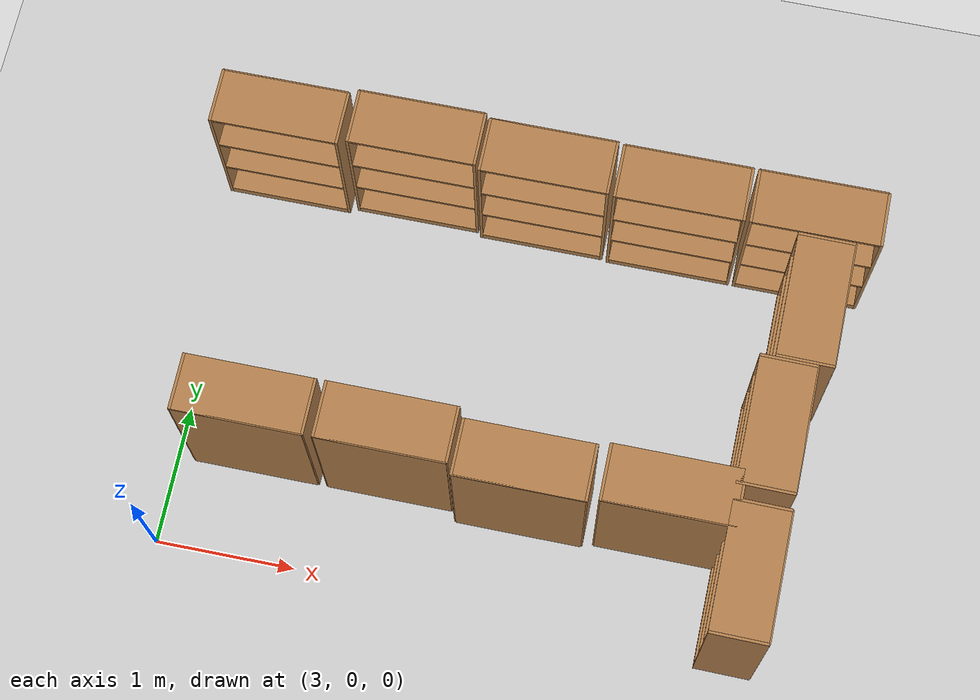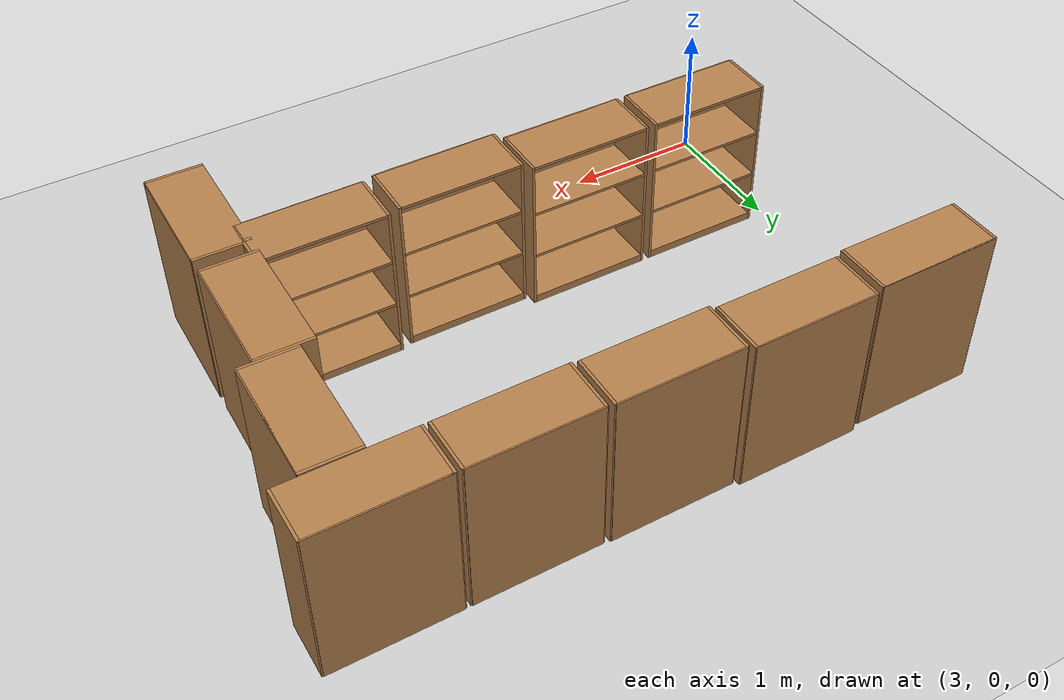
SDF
<sdf version="1.6">
 <world name="default">
  <model name="ground_plane">
   <static>1</static>
   <link name="link">
    <collision name="collision">
     <geometry><plane><normal>0 0 1</normal><size>100 100</size></plane></geometry>
     <surface><friction><ode><mu>100</mu><mu2>50</mu2></ode></friction></surface>
    </collision>
    <visual name="visual">
     <cast_shadows>0</cast_shadows>
     <geometry><plane><normal>0 0 1</normal><size>100 100</size></plane></geometry>
     <material>
      <script><uri>file://media/materials/scripts/gazebo.material</uri><name>Gazebo/Grey</name></script>
     </material>
    </visual>
   </link>
  </model>
  <model name="bookshelf_0">
   <static>1</static>
   <link name="link">
    <inertial><mass>1</mass></inertial>
    <collision name="back">
     <pose>0 0.005 0.6 0 -0 0</pose>
     <geometry><box><size>0.9 0.01 1.2</size></box></geometry>
    </collision>
    <visual name="visual1">
     <pose>0 0.005 0.6 0 -0 0</pose>
     <geometry><box><size>0.9 0.01 1.2</size></box></geometry>
     <material>
      <script><uri>file://media/materials/scripts/gazebo.material</uri><name>Gazebo/Wood</name></script>
     </material>
    </visual>
    <collision name="left_side">
     <pose>0.45 -0.195 0.6 0 -0 0</pose>
     <geometry><box><size>0.02 0.4 1.2</size></box></geometry>
    </collision>
    <visual name="visual2">
     <pose>0.45 -0.195 0.6 0 -0 0</pose>
     <geometry><box><size>0.02 0.4 1.2</size></box></geometry>
     <material>
      <script><uri>file://media/materials/scripts/gazebo.material</uri><name>Gazebo/Wood</name></script>
     </material>
    </visual>
    <collision name="right_side">
     <pose>-0.45 -0.195 0.6 0 -0 0</pose>
     <geometry><box><size>0.02 0.4 1.2</size></box></geometry>
    </collision>
    <visual name="visual3">
     <pose>-0.45 -0.195 0.6 0 -0 0</pose>
     <geometry><box><size>0.02 0.4 1.2</size></box></geometry>
     <material>
      <script><uri>file://media/materials/scripts/gazebo.material</uri><name>Gazebo/Wood</name></script>
     </material>
    </visual>
    <collision name="bottom">
     <pose>0 -0.195 0.03 0 -0 0</pose>
     <geometry><box><size>0.88 0.4 0.06</size></box></geometry>
    </collision>
    <visual name="visual4">
     <pose>0 -0.195 0.03 0 -0 0</pose>
     <geometry><box><size>0.88 0.4 0.06</size></box></geometry>
     <material>
      <script><uri>file://media/materials/scripts/gazebo.material</uri><name>Gazebo/Wood</name></script>
     </material>
    </visual>
    <collision name="top">
     <pose>0 -0.195 1.19 0 -0 0</pose>
     <geometry><box><size>0.88 0.4 0.02</size></box></geometry>
    </collision>
    <visual name="visual5">
     <pose>0 -0.195 1.19 0 -0 0</pose>
     <geometry><box><size>0.88 0.4 0.02</size></box></geometry>
     <material>
      <script><uri>file://media/materials/scripts/gazebo.material</uri><name>Gazebo/Wood</name></script>
     </material>
    </visual>
    <collision name="low_shelf">
     <pose>0 -0.195 0.43 0 -0 0</pose>
     <geometry><box><size>0.88 0.4 0.02</size></box></geometry>
    </collision>
    <visual name="visual6">
     <pose>0 -0.195 0.43 0 -0 0</pose>
     <geometry><box><size>0.88 0.4 0.02</size></box></geometry>
     <material>
      <script><uri>file://media/materials/scripts/gazebo.material</uri><name>Gazebo/Wood</name></script>
     </material>
    </visual>
    <collision name="high_shelf">
     <pose>0 -0.195 0.8 0 -0 0</pose>
     <geometry><box><size>0.88 0.4 0.02</size></box></geometry>
    </collision>
    <visual name="visual7">
     <pose>0 -0.195 0.8 0 -0 0</pose>
     <geometry><box><size>0.88 0.4 0.02</size></box></geometry>
     <material>
      <script><uri>file://media/materials/scripts/gazebo.material</uri><name>Gazebo/Wood</name></script>
     </material>
    </visual>
   </link>
   <pose>7.12078 3.11649 0 0 -0 0</pose>
  </model>
  <model name="bookshelf_0_clone">
   <static>1</static>
   <link name="link">
    <inertial><mass>1</mass></inertial>
    <collision name="back">
     <pose>0 0.005 0.6 0 -0 0</pose>
     <geometry><box><size>0.9 0.01 1.2</size></box></geometry>
    </collision>
    <visual name="visual1">
     <pose>0 0.005 0.6 0 -0 0</pose>
     <geometry><box><size>0.9 0.01 1.2</size></box></geometry>
     <material>
      <script><uri>file://media/materials/scripts/gazebo.material</uri><name>Gazebo/Wood</name></script>
     </material>
    </visual>
    <collision name="left_side">
     <pose>0.45 -0.195 0.6 0 -0 0</pose>
     <geometry><box><size>0.02 0.4 1.2</size></box></geometry>
    </collision>
    <visual name="visual2">
     <pose>0.45 -0.195 0.6 0 -0 0</pose>
     <geometry><box><size>0.02 0.4 1.2</size></box></geometry>
     <material>
      <script><uri>file://media/materials/scripts/gazebo.material</uri><name>Gazebo/Wood</name></script>
     </material>
    </visual>
    <collision name="right_side">
     <pose>-0.45 -0.195 0.6 0 -0 0</pose>
     <geometry><box><size>0.02 0.4 1.2</size></box></geometry>
    </collision>
    <visual name="visual3">
     <pose>-0.45 -0.195 0.6 0 -0 0</pose>
     <geometry><box><size>0.02 0.4 1.2</size></box></geometry>
     <material>
      <script><uri>file://media/materials/scripts/gazebo.material</uri><name>Gazebo/Wood</name></script>
     </material>
    </visual>
    <collision name="bottom">
     <pose>0 -0.195 0.03 0 -0 0</pose>
     <geometry><box><size>0.88 0.4 0.06</size></box></geometry>
    </collision>
    <visual name="visual4">
     <pose>0 -0.195 0.03 0 -0 0</pose>
     <geometry><box><size>0.88 0.4 0.06</size></box></geometry>
     <material>
      <script><uri>file://media/materials/scripts/gazebo.material</uri><name>Gazebo/Wood</name></script>
     </material>
    </visual>
    <collision name="top">
     <pose>0 -0.195 1.19 0 -0 0</pose>
     <geometry><box><size>0.88 0.4 0.02</size></box></geometry>
    </collision>
    <visual name="visual5">
     <pose>0 -0.195 1.19 0 -0 0</pose>
     <geometry><box><size>0.88 0.4 0.02</size></box></geometry>
     <material>
      <script><uri>file://media/materials/scripts/gazebo.material</uri><name>Gazebo/Wood</name></script>
     </material>
    </visual>
    <collision name="low_shelf">
     <pose>0 -0.195 0.43 0 -0 0</pose>
     <geometry><box><size>0.88 0.4 0.02</size></box></geometry>
    </collision>
    <visual name="visual6">
     <pose>0 -0.195 0.43 0 -0 0</pose>
     <geometry><box><size>0.88 0.4 0.02</size></box></geometry>
     <material>
      <script><uri>file://media/materials/scripts/gazebo.material</uri><name>Gazebo/Wood</name></script>
     </material>
    </visual>
    <collision name="high_shelf">
     <pose>0 -0.195 0.8 0 -0 0</pose>
     <geometry><box><size>0.88 0.4 0.02</size></box></geometry>
    </collision>
    <visual name="visual7">
     <pose>0 -0.195 0.8 0 -0 0</pose>
     <geometry><box><size>0.88 0.4 0.02</size></box></geometry>
     <material>
      <script><uri>file://media/materials/scripts/gazebo.material</uri><name>Gazebo/Wood</name></script>
     </material>
    </visual>
   </link>
   <pose>6.17473 3.11664 0 0 -0 0</pose>
  </model>
  <model name="bookshelf_0_clone_0">
   <static>1</static>
   <link name="link">
    <inertial><mass>1</mass></inertial>
    <collision name="back">
     <pose>0 0.005 0.6 0 -0 0</pose>
     <geometry><box><size>0.9 0.01 1.2</size></box></geometry>
    </collision>
    <visual name="visual1">
     <pose>0 0.005 0.6 0 -0 0</pose>
     <geometry><box><size>0.9 0.01 1.2</size></box></geometry>
     <material>
      <script><uri>file://media/materials/scripts/gazebo.material</uri><name>Gazebo/Wood</name></script>
     </material>
    </visual>
    <collision name="left_side">
     <pose>0.45 -0.195 0.6 0 -0 0</pose>
     <geometry><box><size>0.02 0.4 1.2</size></box></geometry>
    </collision>
    <visual name="visual2">
     <pose>0.45 -0.195 0.6 0 -0 0</pose>
     <geometry><box><size>0.02 0.4 1.2</size></box></geometry>
     <material>
      <script><uri>file://media/materials/scripts/gazebo.material</uri><name>Gazebo/Wood</name></script>
     </material>
    </visual>
    <collision name="right_side">
     <pose>-0.45 -0.195 0.6 0 -0 0</pose>
     <geometry><box><size>0.02 0.4 1.2</size></box></geometry>
    </collision>
    <visual name="visual3">
     <pose>-0.45 -0.195 0.6 0 -0 0</pose>
     <geometry><box><size>0.02 0.4 1.2</size></box></geometry>
     <material>
      <script><uri>file://media/materials/scripts/gazebo.material</uri><name>Gazebo/Wood</name></script>
     </material>
    </visual>
    <collision name="bottom">
     <pose>0 -0.195 0.03 0 -0 0</pose>
     <geometry><box><size>0.88 0.4 0.06</size></box></geometry>
    </collision>
    <visual name="visual4">
     <pose>0 -0.195 0.03 0 -0 0</pose>
     <geometry><box><size>0.88 0.4 0.06</size></box></geometry>
     <material>
      <script><uri>file://media/materials/scripts/gazebo.material</uri><name>Gazebo/Wood</name></script>
     </material>
    </visual>
    <collision name="top">
     <pose>0 -0.195 1.19 0 -0 0</pose>
     <geometry><box><size>0.88 0.4 0.02</size></box></geometry>
    </collision>
    <visual name="visual5">
     <pose>0 -0.195 1.19 0 -0 0</pose>
     <geometry><box><size>0.88 0.4 0.02</size></box></geometry>
     <material>
      <script><uri>file://media/materials/scripts/gazebo.material</uri><name>Gazebo/Wood</name></script>
     </material>
    </visual>
    <collision name="low_shelf">
     <pose>0 -0.195 0.43 0 -0 0</pose>
     <geometry><box><size>0.88 0.4 0.02</size></box></geometry>
    </collision>
    <visual name="visual6">
     <pose>0 -0.195 0.43 0 -0 0</pose>
     <geometry><box><size>0.88 0.4 0.02</size></box></geometry>
     <material>
      <script><uri>file://media/materials/scripts/gazebo.material</uri><name>Gazebo/Wood</name></script>
     </material>
    </visual>
    <collision name="high_shelf">
     <pose>0 -0.195 0.8 0 -0 0</pose>
     <geometry><box><size>0.88 0.4 0.02</size></box></geometry>
    </collision>
    <visual name="visual7">
     <pose>0 -0.195 0.8 0 -0 0</pose>
     <geometry><box><size>0.88 0.4 0.02</size></box></geometry>
     <material>
      <script><uri>file://media/materials/scripts/gazebo.material</uri><name>Gazebo/Wood</name></script>
     </material>
    </visual>
   </link>
   <pose>5.22479 3.12787 0 0 -0 0</pose>
  </model>
  <model name="bookshelf_0_clone_1">
   <static>1</static>
   <link name="link">
    <inertial><mass>1</mass></inertial>
    <collision name="back">
     <pose>0 0.005 0.6 0 -0 0</pose>
     <geometry><box><size>0.9 0.01 1.2</size></box></geometry>
    </collision>
    <visual name="visual1">
     <pose>0 0.005 0.6 0 -0 0</pose>
     <geometry><box><size>0.9 0.01 1.2</size></box></geometry>
     <material>
      <script><uri>file://media/materials/scripts/gazebo.material</uri><name>Gazebo/Wood</name></script>
     </material>
    </visual>
    <collision name="left_side">
     <pose>0.45 -0.195 0.6 0 -0 0</pose>
     <geometry><box><size>0.02 0.4 1.2</size></box></geometry>
    </collision>
    <visual name="visual2">
     <pose>0.45 -0.195 0.6 0 -0 0</pose>
     <geometry><box><size>0.02 0.4 1.2</size></box></geometry>
     <material>
      <script><uri>file://media/materials/scripts/gazebo.material</uri><name>Gazebo/Wood</name></script>
     </material>
    </visual>
    <collision name="right_side">
     <pose>-0.45 -0.195 0.6 0 -0 0</pose>
     <geometry><box><size>0.02 0.4 1.2</size></box></geometry>
    </collision>
    <visual name="visual3">
     <pose>-0.45 -0.195 0.6 0 -0 0</pose>
     <geometry><box><size>0.02 0.4 1.2</size></box></geometry>
     <material>
      <script><uri>file://media/materials/scripts/gazebo.material</uri><name>Gazebo/Wood</name></script>
     </material>
    </visual>
    <collision name="bottom">
     <pose>0 -0.195 0.03 0 -0 0</pose>
     <geometry><box><size>0.88 0.4 0.06</size></box></geometry>
    </collision>
    <visual name="visual4">
     <pose>0 -0.195 0.03 0 -0 0</pose>
     <geometry><box><size>0.88 0.4 0.06</size></box></geometry>
     <material>
      <script><uri>file://media/materials/scripts/gazebo.material</uri><name>Gazebo/Wood</name></script>
     </material>
    </visual>
    <collision name="top">
     <pose>0 -0.195 1.19 0 -0 0</pose>
     <geometry><box><size>0.88 0.4 0.02</size></box></geometry>
    </collision>
    <visual name="visual5">
     <pose>0 -0.195 1.19 0 -0 0</pose>
     <geometry><box><size>0.88 0.4 0.02</size></box></geometry>
     <material>
      <script><uri>file://media/materials/scripts/gazebo.material</uri><name>Gazebo/Wood</name></script>
     </material>
    </visual>
    <collision name="low_shelf">
     <pose>0 -0.195 0.43 0 -0 0</pose>
     <geometry><box><size>0.88 0.4 0.02</size></box></geometry>
    </collision>
    <visual name="visual6">
     <pose>0 -0.195 0.43 0 -0 0</pose>
     <geometry><box><size>0.88 0.4 0.02</size></box></geometry>
     <material>
      <script><uri>file://media/materials/scripts/gazebo.material</uri><name>Gazebo/Wood</name></script>
     </material>
    </visual>
    <collision name="high_shelf">
     <pose>0 -0.195 0.8 0 -0 0</pose>
     <geometry><box><size>0.88 0.4 0.02</size></box></geometry>
    </collision>
    <visual name="visual7">
     <pose>0 -0.195 0.8 0 -0 0</pose>
     <geometry><box><size>0.88 0.4 0.02</size></box></geometry>
     <material>
      <script><uri>file://media/materials/scripts/gazebo.material</uri><name>Gazebo/Wood</name></script>
     </material>
    </visual>
   </link>
   <pose>4.28509 3.15898 0 0 -0 0</pose>
  </model>
  <model name="bookshelf_0_clone_2">
   <static>1</static>
   <link name="link">
    <inertial><mass>1</mass></inertial>
    <collision name="back">
     <pose>0 0.005 0.6 0 -0 0</pose>
     <geometry><box><size>0.9 0.01 1.2</size></box></geometry>
    </collision>
    <visual name="visual1">
     <pose>0 0.005 0.6 0 -0 0</pose>
     <geometry><box><size>0.9 0.01 1.2</size></box></geometry>
     <material>
      <script><uri>file://media/materials/scripts/gazebo.material</uri><name>Gazebo/Wood</name></script>
     </material>
    </visual>
    <collision name="left_side">
     <pose>0.45 -0.195 0.6 0 -0 0</pose>
     <geometry><box><size>0.02 0.4 1.2</size></box></geometry>
    </collision>
    <visual name="visual2">
     <pose>0.45 -0.195 0.6 0 -0 0</pose>
     <geometry><box><size>0.02 0.4 1.2</size></box></geometry>
     <material>
      <script><uri>file://media/materials/scripts/gazebo.material</uri><name>Gazebo/Wood</name></script>
     </material>
    </visual>
    <collision name="right_side">
     <pose>-0.45 -0.195 0.6 0 -0 0</pose>
     <geometry><box><size>0.02 0.4 1.2</size></box></geometry>
    </collision>
    <visual name="visual3">
     <pose>-0.45 -0.195 0.6 0 -0 0</pose>
     <geometry><box><size>0.02 0.4 1.2</size></box></geometry>
     <material>
      <script><uri>file://media/materials/scripts/gazebo.material</uri><name>Gazebo/Wood</name></script>
     </material>
    </visual>
    <collision name="bottom">
     <pose>0 -0.195 0.03 0 -0 0</pose>
     <geometry><box><size>0.88 0.4 0.06</size></box></geometry>
    </collision>
    <visual name="visual4">
     <pose>0 -0.195 0.03 0 -0 0</pose>
     <geometry><box><size>0.88 0.4 0.06</size></box></geometry>
     <material>
      <script><uri>file://media/materials/scripts/gazebo.material</uri><name>Gazebo/Wood</name></script>
     </material>
    </visual>
    <collision name="top">
     <pose>0 -0.195 1.19 0 -0 0</pose>
     <geometry><box><size>0.88 0.4 0.02</size></box></geometry>
    </collision>
    <visual name="visual5">
     <pose>0 -0.195 1.19 0 -0 0</pose>
     <geometry><box><size>0.88 0.4 0.02</size></box></geometry>
     <material>
      <script><uri>file://media/materials/scripts/gazebo.material</uri><name>Gazebo/Wood</name></script>
     </material>
    </visual>
    <collision name="low_shelf">
     <pose>0 -0.195 0.43 0 -0 0</pose>
     <geometry><box><size>0.88 0.4 0.02</size></box></geometry>
    </collision>
    <visual name="visual6">
     <pose>0 -0.195 0.43 0 -0 0</pose>
     <geometry><box><size>0.88 0.4 0.02</size></box></geometry>
     <material>
      <script><uri>file://media/materials/scripts/gazebo.material</uri><name>Gazebo/Wood</name></script>
     </material>
    </visual>
    <collision name="high_shelf">
     <pose>0 -0.195 0.8 0 -0 0</pose>
     <geometry><box><size>0.88 0.4 0.02</size></box></geometry>
    </collision>
    <visual name="visual7">
     <pose>0 -0.195 0.8 0 -0 0</pose>
     <geometry><box><size>0.88 0.4 0.02</size></box></geometry>
     <material>
      <script><uri>file://media/materials/scripts/gazebo.material</uri><name>Gazebo/Wood</name></script>
     </material>
    </visual>
   </link>
   <pose>3.31626 3.12697 0 0 -0 0</pose>
  </model>
  <model name="bookshelf_0_clone_6_clone_clone_6">
   <static>1</static>
   <link name="link">
    <inertial><mass>1</mass></inertial>
    <collision name="back">
     <pose>0 0.005 0.6 0 -0 0</pose>
     <geometry><box><size>0.9 0.01 1.2</size></box></geometry>
    </collision>
    <visual name="visual1">
     <pose>0 0.005 0.6 0 -0 0</pose>
     <geometry><box><size>0.9 0.01 1.2</size></box></geometry>
     <material>
      <script><uri>file://media/materials/scripts/gazebo.material</uri><name>Gazebo/Wood</name></script>
     </material>
    </visual>
    <collision name="left_side">
     <pose>0.45 -0.195 0.6 0 -0 0</pose>
     <geometry><box><size>0.02 0.4 1.2</size></box></geometry>
    </collision>
    <visual name="visual2">
     <pose>0.45 -0.195 0.6 0 -0 0</pose>
     <geometry><box><size>0.02 0.4 1.2</size></box></geometry>
     <material>
      <script><uri>file://media/materials/scripts/gazebo.material</uri><name>Gazebo/Wood</name></script>
     </material>
    </visual>
    <collision name="right_side">
     <pose>-0.45 -0.195 0.6 0 -0 0</pose>
     <geometry><box><size>0.02 0.4 1.2</size></box></geometry>
    </collision>
    <visual name="visual3">
     <pose>-0.45 -0.195 0.6 0 -0 0</pose>
     <geometry><box><size>0.02 0.4 1.2</size></box></geometry>
     <material>
      <script><uri>file://media/materials/scripts/gazebo.material</uri><name>Gazebo/Wood</name></script>
     </material>
    </visual>
    <collision name="bottom">
     <pose>0 -0.195 0.03 0 -0 0</pose>
     <geometry><box><size>0.88 0.4 0.06</size></box></geometry>
    </collision>
    <visual name="visual4">
     <pose>0 -0.195 0.03 0 -0 0</pose>
     <geometry><box><size>0.88 0.4 0.06</size></box></geometry>
     <material>
      <script><uri>file://media/materials/scripts/gazebo.material</uri><name>Gazebo/Wood</name></script>
     </material>
    </visual>
    <collision name="top">
     <pose>0 -0.195 1.19 0 -0 0</pose>
     <geometry><box><size>0.88 0.4 0.02</size></box></geometry>
    </collision>
    <visual name="visual5">
     <pose>0 -0.195 1.19 0 -0 0</pose>
     <geometry><box><size>0.88 0.4 0.02</size></box></geometry>
     <material>
      <script><uri>file://media/materials/scripts/gazebo.material</uri><name>Gazebo/Wood</name></script>
     </material>
    </visual>
    <collision name="low_shelf">
     <pose>0 -0.195 0.43 0 -0 0</pose>
     <geometry><box><size>0.88 0.4 0.02</size></box></geometry>
    </collision>
    <visual name="visual6">
     <pose>0 -0.195 0.43 0 -0 0</pose>
     <geometry><box><size>0.88 0.4 0.02</size></box></geometry>
     <material>
      <script><uri>file://media/materials/scripts/gazebo.material</uri><name>Gazebo/Wood</name></script>
     </material>
    </visual>
    <collision name="high_shelf">
     <pose>0 -0.195 0.8 0 -0 0</pose>
     <geometry><box><size>0.88 0.4 0.02</size></box></geometry>
    </collision>
    <visual name="visual7">
     <pose>0 -0.195 0.8 0 -0 0</pose>
     <geometry><box><size>0.88 0.4 0.02</size></box></geometry>
     <material>
      <script><uri>file://media/materials/scripts/gazebo.material</uri><name>Gazebo/Wood</name></script>
     </material>
    </visual>
   </link>
   <pose>6.48033 0.592761 0 0 -0 3.14</pose>
  </model>
  <model name="bookshelf_0_clone_6_clone_clone_7">
   <static>1</static>
   <link name="link">
    <inertial><mass>1</mass></inertial>
    <collision name="back">
     <pose>0 0.005 0.6 0 -0 0</pose>
     <geometry><box><size>0.9 0.01 1.2</size></box></geometry>
    </collision>
    <visual name="visual1">
     <pose>0 0.005 0.6 0 -0 0</pose>
     <geometry><box><size>0.9 0.01 1.2</size></box></geometry>
     <material>
      <script><uri>file://media/materials/scripts/gazebo.material</uri><name>Gazebo/Wood</name></script>
     </material>
    </visual>
    <collision name="left_side">
     <pose>0.45 -0.195 0.6 0 -0 0</pose>
     <geometry><box><size>0.02 0.4 1.2</size></box></geometry>
    </collision>
    <visual name="visual2">
     <pose>0.45 -0.195 0.6 0 -0 0</pose>
     <geometry><box><size>0.02 0.4 1.2</size></box></geometry>
     <material>
      <script><uri>file://media/materials/scripts/gazebo.material</uri><name>Gazebo/Wood</name></script>
     </material>
    </visual>
    <collision name="right_side">
     <pose>-0.45 -0.195 0.6 0 -0 0</pose>
     <geometry><box><size>0.02 0.4 1.2</size></box></geometry>
    </collision>
    <visual name="visual3">
     <pose>-0.45 -0.195 0.6 0 -0 0</pose>
     <geometry><box><size>0.02 0.4 1.2</size></box></geometry>
     <material>
      <script><uri>file://media/materials/scripts/gazebo.material</uri><name>Gazebo/Wood</name></script>
     </material>
    </visual>
    <collision name="bottom">
     <pose>0 -0.195 0.03 0 -0 0</pose>
     <geometry><box><size>0.88 0.4 0.06</size></box></geometry>
    </collision>
    <visual name="visual4">
     <pose>0 -0.195 0.03 0 -0 0</pose>
     <geometry><box><size>0.88 0.4 0.06</size></box></geometry>
     <material>
      <script><uri>file://media/materials/scripts/gazebo.material</uri><name>Gazebo/Wood</name></script>
     </material>
    </visual>
    <collision name="top">
     <pose>0 -0.195 1.19 0 -0 0</pose>
     <geometry><box><size>0.88 0.4 0.02</size></box></geometry>
    </collision>
    <visual name="visual5">
     <pose>0 -0.195 1.19 0 -0 0</pose>
     <geometry><box><size>0.88 0.4 0.02</size></box></geometry>
     <material>
      <script><uri>file://media/materials/scripts/gazebo.material</uri><name>Gazebo/Wood</name></script>
     </material>
    </visual>
    <collision name="low_shelf">
     <pose>0 -0.195 0.43 0 -0 0</pose>
     <geometry><box><size>0.88 0.4 0.02</size></box></geometry>
    </collision>
    <visual name="visual6">
     <pose>0 -0.195 0.43 0 -0 0</pose>
     <geometry><box><size>0.88 0.4 0.02</size></box></geometry>
     <material>
      <script><uri>file://media/materials/scripts/gazebo.material</uri><name>Gazebo/Wood</name></script>
     </material>
    </visual>
    <collision name="high_shelf">
     <pose>0 -0.195 0.8 0 -0 0</pose>
     <geometry><box><size>0.88 0.4 0.02</size></box></geometry>
    </collision>
    <visual name="visual7">
     <pose>0 -0.195 0.8 0 -0 0</pose>
     <geometry><box><size>0.88 0.4 0.02</size></box></geometry>
     <material>
      <script><uri>file://media/materials/scripts/gazebo.material</uri><name>Gazebo/Wood</name></script>
     </material>
    </visual>
   </link>
   <pose>5.49251 0.567553 0 0 -0 3.14</pose>
  </model>
  <model name="bookshelf_0_clone_6_clone_clone_8">
   <static>1</static>
   <link name="link">
    <inertial><mass>1</mass></inertial>
    <collision name="back">
     <pose>0 0.005 0.6 0 -0 0</pose>
     <geometry><box><size>0.9 0.01 1.2</size></box></geometry>
    </collision>
    <visual name="visual1">
     <pose>0 0.005 0.6 0 -0 0</pose>
     <geometry><box><size>0.9 0.01 1.2</size></box></geometry>
     <material>
      <script><uri>file://media/materials/scripts/gazebo.material</uri><name>Gazebo/Wood</name></script>
     </material>
    </visual>
    <collision name="left_side">
     <pose>0.45 -0.195 0.6 0 -0 0</pose>
     <geometry><box><size>0.02 0.4 1.2</size></box></geometry>
    </collision>
    <visual name="visual2">
     <pose>0.45 -0.195 0.6 0 -0 0</pose>
     <geometry><box><size>0.02 0.4 1.2</size></box></geometry>
     <material>
      <script><uri>file://media/materials/scripts/gazebo.material</uri><name>Gazebo/Wood</name></script>
     </material>
    </visual>
    <collision name="right_side">
     <pose>-0.45 -0.195 0.6 0 -0 0</pose>
     <geometry><box><size>0.02 0.4 1.2</size></box></geometry>
    </collision>
    <visual name="visual3">
     <pose>-0.45 -0.195 0.6 0 -0 0</pose>
     <geometry><box><size>0.02 0.4 1.2</size></box></geometry>
     <material>
      <script><uri>file://media/materials/scripts/gazebo.material</uri><name>Gazebo/Wood</name></script>
     </material>
    </visual>
    <collision name="bottom">
     <pose>0 -0.195 0.03 0 -0 0</pose>
     <geometry><box><size>0.88 0.4 0.06</size></box></geometry>
    </collision>
    <visual name="visual4">
     <pose>0 -0.195 0.03 0 -0 0</pose>
     <geometry><box><size>0.88 0.4 0.06</size></box></geometry>
     <material>
      <script><uri>file://media/materials/scripts/gazebo.material</uri><name>Gazebo/Wood</name></script>
     </material>
    </visual>
    <collision name="top">
     <pose>0 -0.195 1.19 0 -0 0</pose>
     <geometry><box><size>0.88 0.4 0.02</size></box></geometry>
    </collision>
    <visual name="visual5">
     <pose>0 -0.195 1.19 0 -0 0</pose>
     <geometry><box><size>0.88 0.4 0.02</size></box></geometry>
     <material>
      <script><uri>file://media/materials/scripts/gazebo.material</uri><name>Gazebo/Wood</name></script>
     </material>
    </visual>
    <collision name="low_shelf">
     <pose>0 -0.195 0.43 0 -0 0</pose>
     <geometry><box><size>0.88 0.4 0.02</size></box></geometry>
    </collision>
    <visual name="visual6">
     <pose>0 -0.195 0.43 0 -0 0</pose>
     <geometry><box><size>0.88 0.4 0.02</size></box></geometry>
     <material>
      <script><uri>file://media/materials/scripts/gazebo.material</uri><name>Gazebo/Wood</name></script>
     </material>
    </visual>
    <collision name="high_shelf">
     <pose>0 -0.195 0.8 0 -0 0</pose>
     <geometry><box><size>0.88 0.4 0.02</size></box></geometry>
    </collision>
    <visual name="visual7">
     <pose>0 -0.195 0.8 0 -0 0</pose>
     <geometry><box><size>0.88 0.4 0.02</size></box></geometry>
     <material>
      <script><uri>file://media/materials/scripts/gazebo.material</uri><name>Gazebo/Wood</name></script>
     </material>
    </visual>
   </link>
   <pose>4.54635 0.641093 0 0 -0 3.14</pose>
  </model>
  <model name="bookshelf_0_clone_6_clone_clone_9">
   <static>1</static>
   <link name="link">
    <inertial><mass>1</mass></inertial>
    <collision name="back">
     <pose>0 0.005 0.6 0 -0 0</pose>
     <geometry><box><size>0.9 0.01 1.2</size></box></geometry>
    </collision>
    <visual name="visual1">
     <pose>0 0.005 0.6 0 -0 0</pose>
     <geometry><box><size>0.9 0.01 1.2</size></box></geometry>
     <material>
      <script><uri>file://media/materials/scripts/gazebo.material</uri><name>Gazebo/Wood</name></script>
     </material>
    </visual>
    <collision name="left_side">
     <pose>0.45 -0.195 0.6 0 -0 0</pose>
     <geometry><box><size>0.02 0.4 1.2</size></box></geometry>
    </collision>
    <visual name="visual2">
     <pose>0.45 -0.195 0.6 0 -0 0</pose>
     <geometry><box><size>0.02 0.4 1.2</size></box></geometry>
     <material>
      <script><uri>file://media/materials/scripts/gazebo.material</uri><name>Gazebo/Wood</name></script>
     </material>
    </visual>
    <collision name="right_side">
     <pose>-0.45 -0.195 0.6 0 -0 0</pose>
     <geometry><box><size>0.02 0.4 1.2</size></box></geometry>
    </collision>
    <visual name="visual3">
     <pose>-0.45 -0.195 0.6 0 -0 0</pose>
     <geometry><box><size>0.02 0.4 1.2</size></box></geometry>
     <material>
      <script><uri>file://media/materials/scripts/gazebo.material</uri><name>Gazebo/Wood</name></script>
     </material>
    </visual>
    <collision name="bottom">
     <pose>0 -0.195 0.03 0 -0 0</pose>
     <geometry><box><size>0.88 0.4 0.06</size></box></geometry>
    </collision>
    <visual name="visual4">
     <pose>0 -0.195 0.03 0 -0 0</pose>
     <geometry><box><size>0.88 0.4 0.06</size></box></geometry>
     <material>
      <script><uri>file://media/materials/scripts/gazebo.material</uri><name>Gazebo/Wood</name></script>
     </material>
    </visual>
    <collision name="top">
     <pose>0 -0.195 1.19 0 -0 0</pose>
     <geometry><box><size>0.88 0.4 0.02</size></box></geometry>
    </collision>
    <visual name="visual5">
     <pose>0 -0.195 1.19 0 -0 0</pose>
     <geometry><box><size>0.88 0.4 0.02</size></box></geometry>
     <material>
      <script><uri>file://media/materials/scripts/gazebo.material</uri><name>Gazebo/Wood</name></script>
     </material>
    </visual>
    <collision name="low_shelf">
     <pose>0 -0.195 0.43 0 -0 0</pose>
     <geometry><box><size>0.88 0.4 0.02</size></box></geometry>
    </collision>
    <visual name="visual6">
     <pose>0 -0.195 0.43 0 -0 0</pose>
     <geometry><box><size>0.88 0.4 0.02</size></box></geometry>
     <material>
      <script><uri>file://media/materials/scripts/gazebo.material</uri><name>Gazebo/Wood</name></script>
     </material>
    </visual>
    <collision name="high_shelf">
     <pose>0 -0.195 0.8 0 -0 0</pose>
     <geometry><box><size>0.88 0.4 0.02</size></box></geometry>
    </collision>
    <visual name="visual7">
     <pose>0 -0.195 0.8 0 -0 0</pose>
     <geometry><box><size>0.88 0.4 0.02</size></box></geometry>
     <material>
      <script><uri>file://media/materials/scripts/gazebo.material</uri><name>Gazebo/Wood</name></script>
     </material>
    </visual>
   </link>
   <pose>3.57414 0.641867 0 0 -0 3.14</pose>
  </model>
  <model name="bookshelf_0_clone_6_clone_clone_13_clone_clone_clone_0_clone_2_clone_1">
   <static>1</static>
   <link name="link">
    <inertial><mass>1</mass></inertial>
    <collision name="back">
     <pose>0 0.005 0.6 0 -0 0</pose>
     <geometry><box><size>0.9 0.01 1.2</size></box></geometry>
    </collision>
    <visual name="visual1">
     <pose>0 0.005 0.6 0 -0 0</pose>
     <geometry><box><size>0.9 0.01 1.2</size></box></geometry>
     <material>
      <script><uri>file://media/materials/scripts/gazebo.material</uri><name>Gazebo/Wood</name></script>
     </material>
    </visual>
    <collision name="left_side">
     <pose>0.45 -0.195 0.6 0 -0 0</pose>
     <geometry><box><size>0.02 0.4 1.2</size></box></geometry>
    </collision>
    <visual name="visual2">
     <pose>0.45 -0.195 0.6 0 -0 0</pose>
     <geometry><box><size>0.02 0.4 1.2</size></box></geometry>
     <material>
      <script><uri>file://media/materials/scripts/gazebo.material</uri><name>Gazebo/Wood</name></script>
     </material>
    </visual>
    <collision name="right_side">
     <pose>-0.45 -0.195 0.6 0 -0 0</pose>
     <geometry><box><size>0.02 0.4 1.2</size></box></geometry>
    </collision>
    <visual name="visual3">
     <pose>-0.45 -0.195 0.6 0 -0 0</pose>
     <geometry><box><size>0.02 0.4 1.2</size></box></geometry>
     <material>
      <script><uri>file://media/materials/scripts/gazebo.material</uri><name>Gazebo/Wood</name></script>
     </material>
    </visual>
    <collision name="bottom">
     <pose>0 -0.195 0.03 0 -0 0</pose>
     <geometry><box><size>0.88 0.4 0.06</size></box></geometry>
    </collision>
    <visual name="visual4">
     <pose>0 -0.195 0.03 0 -0 0</pose>
     <geometry><box><size>0.88 0.4 0.06</size></box></geometry>
     <material>
      <script><uri>file://media/materials/scripts/gazebo.material</uri><name>Gazebo/Wood</name></script>
     </material>
    </visual>
    <collision name="top">
     <pose>0 -0.195 1.19 0 -0 0</pose>
     <geometry><box><size>0.88 0.4 0.02</size></box></geometry>
    </collision>
    <visual name="visual5">
     <pose>0 -0.195 1.19 0 -0 0</pose>
     <geometry><box><size>0.88 0.4 0.02</size></box></geometry>
     <material>
      <script><uri>file://media/materials/scripts/gazebo.material</uri><name>Gazebo/Wood</name></script>
     </material>
    </visual>
    <collision name="low_shelf">
     <pose>0 -0.195 0.43 0 -0 0</pose>
     <geometry><box><size>0.88 0.4 0.02</size></box></geometry>
    </collision>
    <visual name="visual6">
     <pose>0 -0.195 0.43 0 -0 0</pose>
     <geometry><box><size>0.88 0.4 0.02</size></box></geometry>
     <material>
      <script><uri>file://media/materials/scripts/gazebo.material</uri><name>Gazebo/Wood</name></script>
     </material>
    </visual>
    <collision name="high_shelf">
     <pose>0 -0.195 0.8 0 -0 0</pose>
     <geometry><box><size>0.88 0.4 0.02</size></box></geometry>
    </collision>
    <visual name="visual7">
     <pose>0 -0.195 0.8 0 -0 0</pose>
     <geometry><box><size>0.88 0.4 0.02</size></box></geometry>
     <material>
      <script><uri>file://media/materials/scripts/gazebo.material</uri><name>Gazebo/Wood</name></script>
     </material>
    </visual>
   </link>
   <pose>7.26416 0.321762 0 0 0 -1.58257</pose>
  </model>
  <model name="bookshelf_0_clone_6_clone_clone_13_clone_clone_clone_0_clone_2_clone_2">
   <static>1</static>
   <link name="link">
    <inertial><mass>1</mass></inertial>
    <collision name="back">
     <pose>0 0.005 0.6 0 -0 0</pose>
     <geometry><box><size>0.9 0.01 1.2</size></box></geometry>
    </collision>
    <visual name="visual1">
     <pose>0 0.005 0.6 0 -0 0</pose>
     <geometry><box><size>0.9 0.01 1.2</size></box></geometry>
     <material>
      <script><uri>file://media/materials/scripts/gazebo.material</uri><name>Gazebo/Wood</name></script>
     </material>
    </visual>
    <collision name="left_side">
     <pose>0.45 -0.195 0.6 0 -0 0</pose>
     <geometry><box><size>0.02 0.4 1.2</size></box></geometry>
    </collision>
    <visual name="visual2">
     <pose>0.45 -0.195 0.6 0 -0 0</pose>
     <geometry><box><size>0.02 0.4 1.2</size></box></geometry>
     <material>
      <script><uri>file://media/materials/scripts/gazebo.material</uri><name>Gazebo/Wood</name></script>
     </material>
    </visual>
    <collision name="right_side">
     <pose>-0.45 -0.195 0.6 0 -0 0</pose>
     <geometry><box><size>0.02 0.4 1.2</size></box></geometry>
    </collision>
    <visual name="visual3">
     <pose>-0.45 -0.195 0.6 0 -0 0</pose>
     <geometry><box><size>0.02 0.4 1.2</size></box></geometry>
     <material>
      <script><uri>file://media/materials/scripts/gazebo.material</uri><name>Gazebo/Wood</name></script>
     </material>
    </visual>
    <collision name="bottom">
     <pose>0 -0.195 0.03 0 -0 0</pose>
     <geometry><box><size>0.88 0.4 0.06</size></box></geometry>
    </collision>
    <visual name="visual4">
     <pose>0 -0.195 0.03 0 -0 0</pose>
     <geometry><box><size>0.88 0.4 0.06</size></box></geometry>
     <material>
      <script><uri>file://media/materials/scripts/gazebo.material</uri><name>Gazebo/Wood</name></script>
     </material>
    </visual>
    <collision name="top">
     <pose>0 -0.195 1.19 0 -0 0</pose>
     <geometry><box><size>0.88 0.4 0.02</size></box></geometry>
    </collision>
    <visual name="visual5">
     <pose>0 -0.195 1.19 0 -0 0</pose>
     <geometry><box><size>0.88 0.4 0.02</size></box></geometry>
     <material>
      <script><uri>file://media/materials/scripts/gazebo.material</uri><name>Gazebo/Wood</name></script>
     </material>
    </visual>
    <collision name="low_shelf">
     <pose>0 -0.195 0.43 0 -0 0</pose>
     <geometry><box><size>0.88 0.4 0.02</size></box></geometry>
    </collision>
    <visual name="visual6">
     <pose>0 -0.195 0.43 0 -0 0</pose>
     <geometry><box><size>0.88 0.4 0.02</size></box></geometry>
     <material>
      <script><uri>file://media/materials/scripts/gazebo.material</uri><name>Gazebo/Wood</name></script>
     </material>
    </visual>
    <collision name="high_shelf">
     <pose>0 -0.195 0.8 0 -0 0</pose>
     <geometry><box><size>0.88 0.4 0.02</size></box></geometry>
    </collision>
    <visual name="visual7">
     <pose>0 -0.195 0.8 0 -0 0</pose>
     <geometry><box><size>0.88 0.4 0.02</size></box></geometry>
     <material>
      <script><uri>file://media/materials/scripts/gazebo.material</uri><name>Gazebo/Wood</name></script>
     </material>
    </visual>
   </link>
   <pose>7.27477 1.33443 0 0 0 -1.58257</pose>
  </model>
  <model name="bookshelf_0_clone_6_clone_clone_13_clone_clone_clone_0_clone_2_clone_3">
   <static>1</static>
   <link name="link">
    <inertial><mass>1</mass></inertial>
    <collision name="back">
     <pose>0 0.005 0.6 0 -0 0</pose>
     <geometry><box><size>0.9 0.01 1.2</size></box></geometry>
    </collision>
    <visual name="visual1">
     <pose>0 0.005 0.6 0 -0 0</pose>
     <geometry><box><size>0.9 0.01 1.2</size></box></geometry>
     <material>
      <script><uri>file://media/materials/scripts/gazebo.material</uri><name>Gazebo/Wood</name></script>
     </material>
    </visual>
    <collision name="left_side">
     <pose>0.45 -0.195 0.6 0 -0 0</pose>
     <geometry><box><size>0.02 0.4 1.2</size></box></geometry>
    </collision>
    <visual name="visual2">
     <pose>0.45 -0.195 0.6 0 -0 0</pose>
     <geometry><box><size>0.02 0.4 1.2</size></box></geometry>
     <material>
      <script><uri>file://media/materials/scripts/gazebo.material</uri><name>Gazebo/Wood</name></script>
     </material>
    </visual>
    <collision name="right_side">
     <pose>-0.45 -0.195 0.6 0 -0 0</pose>
     <geometry><box><size>0.02 0.4 1.2</size></box></geometry>
    </collision>
    <visual name="visual3">
     <pose>-0.45 -0.195 0.6 0 -0 0</pose>
     <geometry><box><size>0.02 0.4 1.2</size></box></geometry>
     <material>
      <script><uri>file://media/materials/scripts/gazebo.material</uri><name>Gazebo/Wood</name></script>
     </material>
    </visual>
    <collision name="bottom">
     <pose>0 -0.195 0.03 0 -0 0</pose>
     <geometry><box><size>0.88 0.4 0.06</size></box></geometry>
    </collision>
    <visual name="visual4">
     <pose>0 -0.195 0.03 0 -0 0</pose>
     <geometry><box><size>0.88 0.4 0.06</size></box></geometry>
     <material>
      <script><uri>file://media/materials/scripts/gazebo.material</uri><name>Gazebo/Wood</name></script>
     </material>
    </visual>
    <collision name="top">
     <pose>0 -0.195 1.19 0 -0 0</pose>
     <geometry><box><size>0.88 0.4 0.02</size></box></geometry>
    </collision>
    <visual name="visual5">
     <pose>0 -0.195 1.19 0 -0 0</pose>
     <geometry><box><size>0.88 0.4 0.02</size></box></geometry>
     <material>
      <script><uri>file://media/materials/scripts/gazebo.material</uri><name>Gazebo/Wood</name></script>
     </material>
    </visual>
    <collision name="low_shelf">
     <pose>0 -0.195 0.43 0 -0 0</pose>
     <geometry><box><size>0.88 0.4 0.02</size></box></geometry>
    </collision>
    <visual name="visual6">
     <pose>0 -0.195 0.43 0 -0 0</pose>
     <geometry><box><size>0.88 0.4 0.02</size></box></geometry>
     <material>
      <script><uri>file://media/materials/scripts/gazebo.material</uri><name>Gazebo/Wood</name></script>
     </material>
    </visual>
    <collision name="high_shelf">
     <pose>0 -0.195 0.8 0 -0 0</pose>
     <geometry><box><size>0.88 0.4 0.02</size></box></geometry>
    </collision>
    <visual name="visual7">
     <pose>0 -0.195 0.8 0 -0 0</pose>
     <geometry><box><size>0.88 0.4 0.02</size></box></geometry>
     <material>
      <script><uri>file://media/materials/scripts/gazebo.material</uri><name>Gazebo/Wood</name></script>
     </material>
    </visual>
   </link>
   <pose>7.39062 2.25158 0 0 0 -1.58257</pose>
  </model>
 </world>
</sdf>
